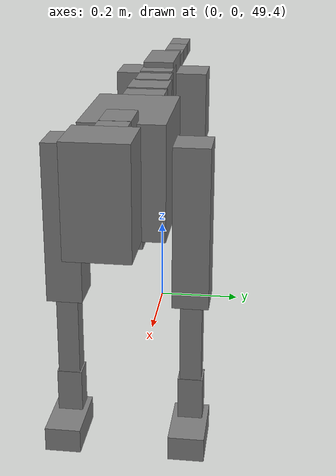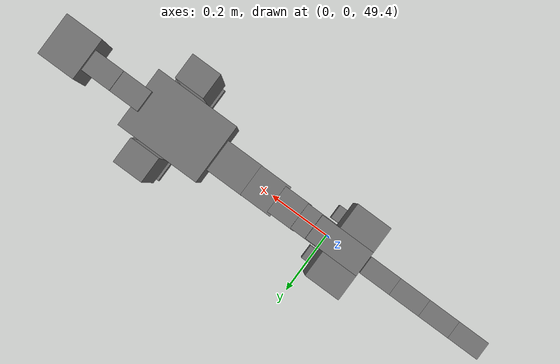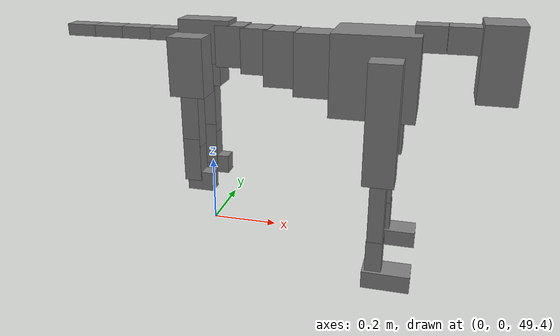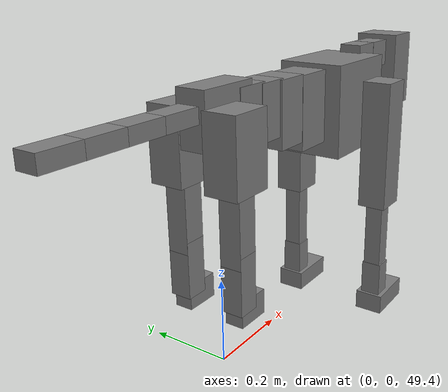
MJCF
<mujoco model="dog">

    <default>
        <joint armature="0.02" stiffness="1" damping="0.2" limited="true"/>
        <geom condim="3" friction="1 0.05 0.05" margin="0.01"/>
        <motor ctrllimited="true" ctrlrange="-1.0 1.0" forcelimited="true" gear="50"/>
    </default>

    <compiler inertiafromgeom="true" angle="radian"/>

    <option timestep="0.016" iterations="50" tolerance="1e-10" solver="Newton" jacobian="dense" cone="pyramidal"/>

    <size nconmax="20000" njmax="60000" nstack="5000000"/>
    <visual>
        <map force="0.1" zfar="30"/>
        <rgba haze="0.15 0.25 0.35 1"/>
        <quality shadowsize="2048"/>
        <global offwidth="800" offheight="800"/>
    </visual>

    <asset>
        <texture type="skybox" builtin="gradient" rgb1="0.3 0.5 0.7" rgb2="0 0 0" width="512" height="512"/>
        <texture name="texplane" type="2d" builtin="checker" rgb1=".2 .3 .4" rgb2=".1 0.15 0.2" width="512" height="512"
                 mark="cross" markrgb=".8 .8 .8"/>
        <texture name="texgeom" type="cube" builtin="flat" mark="cross" width="127" height="1278" rgb1="0.8 0.6 0.4"
                 rgb2="0.8 0.6 0.4" markrgb="1 1 1" random="0.01"/>

        <material name="matplane" reflectance="0.3" texture="texplane" texrepeat="1 1" texuniform="true"/>
        <material name="matgeom" texture="texgeom" texuniform="true" rgba="0.8 0.6 .4 1"/>
    </asset>

    <worldbody>
        <geom name="floor" pos="0 0 0" size="0 0 .25" type="plane" material="matplane" condim="3"/>

        <light directional="false" diffuse=".2 .2 .2" specular="0 0 0" pos="0 0 5" dir="0 0 -1" castshadow="false"/>
        <light mode="targetbodycom" target="torso" directional="false" diffuse=".8 .8 .8" specular="0.3 0.3 0.3"
               pos="0 0 4.0" dir="0 0 -1"/>

        <body name="root" pos="0 0 50">
            <freejoint name="root_1"/>
            <geom type="box" pos="0 0 -0.02" size="0.0774  0.0358  0.063" density="2030"/>

            <body name="spine1" pos="0.054 0 0">
                <joint name="spine1_y" axis="0 1 0" range="0 0.7" limited="true"/>
                <geom type="box" pos="0.02375 0 -0.03" size="0.04375  0.0375  0.05985" density="2030"/>

                <body name="spine2" pos="0.0612 0 0">
                    <joint name="spine2_y" axis="0 1 0" range="-0.15 0.15" limited="true"/>
                    <geom type="box" pos="0.03555  0  -0.04" size="0.04055  0.039  0.06615" density="2030"/>

                    <body name="spine3" pos="0.0730 0 0">
                        <joint name="spine3_y" axis="0 1 0" range="-0.15 0.15" limited="true"/>
                        <geom type="box" pos="0.03555  0  -0.057" size="0.04555  0.0445  0.081" density="2030"/>

                        <body name="spine4" pos="0.0780 0 0">
                            <joint name="spine4_y" axis="0 1 0" range="-0.15 0.15" limited="true"/>
                            <geom type="box" pos="0.05265  0  -0.07" size="0.05265  0.045  0.09135" density="2030"/>

                            <body name="torso" pos="0.1082 0 0">
                                <joint name="torso_y" axis="0 1 0" range="-0.15 0.15" limited="true"/>
                                <geom type="box" pos="0.11925  0  -0.085" size="0.11925  0.085  0.11745"
                                      density="2030"/>

                                <body name="neck1" pos="0.2160  0   0.0180">
                                    <joint name="neck1_y" axis="0 1 0" range="-1.2  -1" limited="true"/>
                                    <geom type="box" pos="0.0423  0  0" size="0.0423  0.03  0.036" density="2325"/>

                                    <body name="neck2" pos="0.0853  0  0">
                                        <joint name="neck2_y" axis="0 1 0" range="0.1  0" limited="true"/>
                                        <geom type="box" pos="0.0423  0  0" size="0.0423  0.03  0.036" density="2325"/>

                                        <body name="head" pos="0.0853  0  0">
                                            <joint name="head_y" axis="0 1 0" range="-0.3  -0.2" limited="true"/>
                                            <geom type="box" pos="0.0531  0  -0.055" size="0.0531  0.06  0.1044"
                                                  density="4030"/>

                                        </body>
                                    </body>
                                </body>

                                <body name="front_shoulder" pos="0.156  0   -0.0480">
                                    <joint name="front_shoulder_y" axis="0 1 0" range="-1 1.5" limited="true"/>
                                    <geom type="box" pos="0 0.13 -0.1429" size="0.0438  0.0375  0.1696" density="1158"/>
                                    <geom type="box" pos="0 -0.13 -0.1429" size="0.0438  0.0375  0.1696"
                                          density="1158"/>

                                    <body name="front_elbow" pos="0  0  -0.2858">
                                        <joint name="front_elbow_y" axis="0 1 0" range="-2 0" limited="true"/>
                                        <geom type="box" pos="0 0.13 -0.1072" size="0.0223  0.0228  0.1072"
                                              density="1081"/>
                                        <geom type="box" pos="0 -0.13 -0.1072" size="0.0223  0.0228  0.1072"
                                              density="1081"/>

                                        <body name="front_wrist" pos="0  0  -0.2145">
                                            <joint name="front_wrist_y" axis="0 1 0" range="-0.2 0" limited="true"/>
                                            <geom type="box" pos="0 0.13 -0.0469" size="0.0237  0.0263  0.0600"
                                                  density="1664"/>
                                            <geom type="box" pos="0 -0.13 -0.0469" size="0.0237  0.0263  0.0600"
                                                  density="1664"/>

                                            <body name="front_finger_end" pos="0  0  -0.0937">
                                                <joint name="front_finger_y" axis="0 1 0" range="-0.4 1"
                                                       limited="true"/>
                                                <geom type="box" pos="0.0375  0.13  -0.0109"
                                                      size="0.0687  0.0375  0.0259" density="1515"/>
                                                <geom type="box" pos="0.0375  -0.13  -0.0109"
                                                      size="0.0687  0.0375  0.0259" density="1515"/>

                                            </body>

                                        </body>
                                    </body>
                                </body>

                            </body>
                        </body>
                    </body>
                </body>
            </body>

            <body name="back_hip" pos="-0.03 0 -0.018">
                <joint name="back_hip_y" axis="0 1 0" range="-1.5 0.3" limited="true"/>
                <geom type="box" pos="0 0.07 -0.0630" size="0.0515  0.0404  0.0858" density="1154"/>
                <geom type="box" pos="0 -0.07 -0.0630" size="0.0515  0.0404  0.0858" density="1154"/>

                <body name="back_knee" pos="0  0  -0.1260">
                    <joint name="back_knee_y" axis="0 1 0" range="0 2.8" limited="true"/>
                    <geom type="box" pos="0 0.07 -0.0833" size="0.0261  0.0257  0.0988" density="1227"/>
                    <geom type="box" pos="0 -0.07 -0.0833" size="0.0261  0.0257  0.0988" density="1227"/>

                    <body name="back_ankle" pos="0  0  -0.1665">
                        <joint name="back_ankle_y" axis="0 1 0" range="-2.2 0" limited="true"/>
                        <geom type="box" pos="0 0.07 -0.0548" size="0.0258  0.0258  0.0661" density="1284"/>
                        <geom type="box" pos="0 -0.07 -0.0548" size="0.0258  0.0258  0.0661" density="1284"/>

                        <body name="back_toe_end" pos="0  0  -0.1097">
                            <joint name="back_toe_y" axis="0 1 0" range="-0.4 1" limited="true"/>
                            <geom type="box" pos="0.0217  0.07  -0.0138" size="0.0397  0.0217  0.0288" density="1515"/>
                            <geom type="box" pos="0.0217  -0.07  -0.0138" size="0.0397  0.0217  0.0288" density="1515"/>

                        </body>
                    </body>
                </body>
            </body>

            <body name="tail1" pos="-0.074 0 -0.006">
                <joint name="tail1_y" axis="0 1 0" range="-0.2 0.2" limited="true"/>
                <geom type="box" pos="-0.0536  0  0" size="0.045  0.025  0.0175" density="1587"/>

                <body name="tail2" pos="-0.09 0 0">
                    <joint name="tail2_y" axis="0 1 0" range="-0.2 0.2" limited="true"/>
                    <geom type="box" pos="-0.0536  0  0" size="0.045  0.025  0.0175" density="1587"/>

                    <body name="tail3" pos="-0.09 0 0">
                        <joint name="tail3_y" axis="0 1 0" range="-0.2 0.2" limited="true"/>
                        <geom type="box" pos="-0.0536  0  0" size="0.045  0.025  0.0175" density="1587"/>

                        <body name="tail4" pos="-0.09 0 0">
                            <joint name="tail4_y" axis="0 1 0" range="-0.2 0.2" limited="true"/>
                            <geom type="box" pos="-0.0536  0  0" size="0.045  0.025  0.0175" density="1587"/>

                        </body>
                    </body>
                </body>
            </body>
        </body>
    </worldbody>

    <actuator>
        <motor joint="spine1_y" forcerange="-150 150     "/>
        <motor joint="spine2_y" forcerange="-150 150     "/>
        <motor joint="spine3_y" forcerange="-150 150     "/>
        <motor joint="spine4_y" forcerange="-150 150     "/>
        <motor joint="torso_y" forcerange="-150 150     "/>
        <motor joint="neck1_y" forcerange="-100 100       "/>
        <motor joint="neck2_y" forcerange="-100 100       "/>
        <motor joint="head_y" forcerange="-150 150       "/>
        <motor joint="front_shoulder_y" forcerange="-150.23 199.55"/>
        <motor joint="front_elbow_y" forcerange="-128.95 137.02"/>
        <motor joint="front_wrist_y" forcerange="-130.54 80.21"/>
        <motor joint="front_finger_y" forcerange="-64.06 95.67"/>
        <motor joint="back_hip_y" forcerange="-399.47 339.40"/>
        <motor joint="back_knee_y" forcerange="-238.93 335.59"/>
        <motor joint="back_angle_y" forcerange="-90.81 222.76"/>
        <motor joint="back_toe_y" forcerange="-50.56 42.76"/>
        <motor joint="tail1_y" forcerange="-50 50     "/>
        <motor joint="tail2_y" forcerange="-50 50     "/>
        <motor joint="tail3_y" forcerange="-50 50     "/>
        <motor joint="tail4_y" forcerange="-50 50     "/>
    </actuator>
</mujoco>
